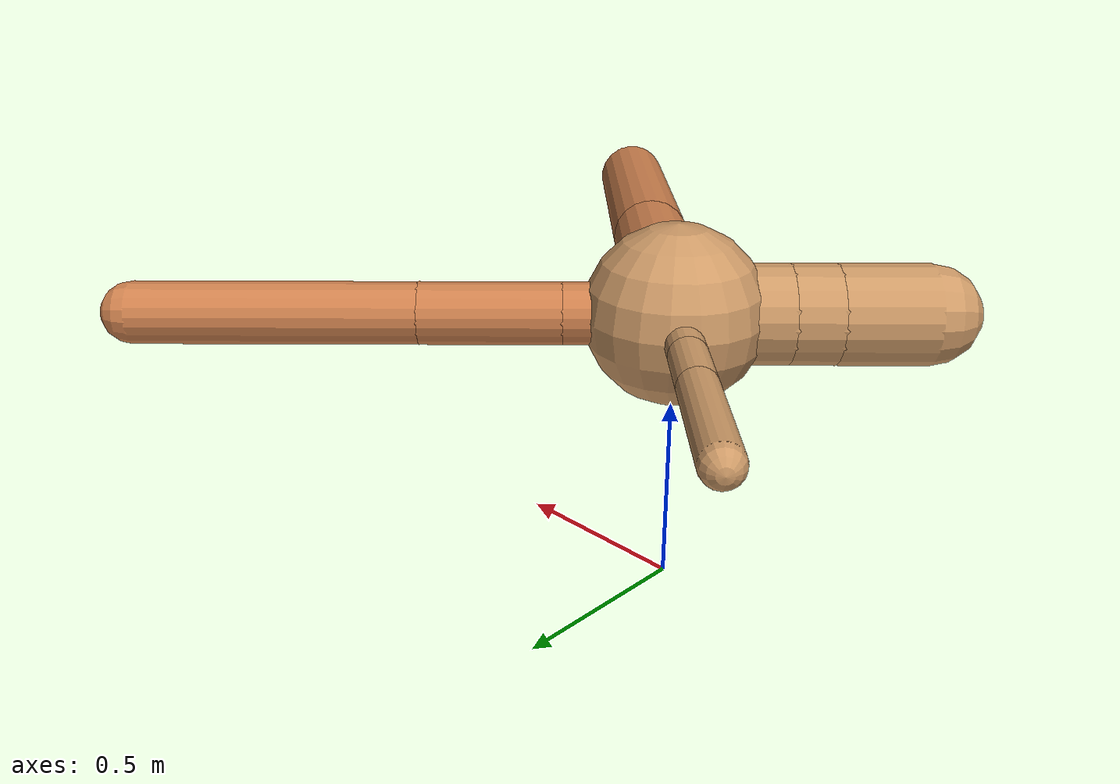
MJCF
<?xml version="1.0" ?>
<mujoco model="ant">

	<compiler angle="degree" coordinate="local" inertiafromgeom="true"/>

	<option integrator="RK4" timestep="0.01"/>

	<custom>

		<numeric data="0.0 0.0 0.55 1.0 0.0 0.0 0.0 0.0 1.0 0.0 -1.0 0.0 -1.0 0.0 1.0" name="init_qpos"/>

	</custom>

	<default>

		<joint armature="1" damping="1" limited="true"/>

		<geom conaffinity="0" condim="3" density="5.0" friction="1.5 0.1 0.1" margin="0.01" rgba="0.8 0.6 0.4 1"/>

	</default>

	<worldbody>

		<body name="torso" pos="0 0 0.75">

			<geom name="torso_geom" pos="0 0 0" size="0.2318634048917663" type="sphere"/>

			<!--joint armature="0" damping="0" limited="false" margin="0.01" name="root" pos="0 0 0" type="free"/-->

			<body name="front_left_leg" pos="0 0 0">

				<geom fromto="0 0 0 0.2 0.2 0" name="aux_1_geom" size="0.0799736616437614" type="capsule" rgba=".8 .5 .3 1"/>

				<body name="aux_1" pos="0.2 0.2 0">

					<joint axis="0 0 1" name="hip_1" pos="0.0 0.0 0.0" range="-40 40" type="hinge"/>

					<geom fromto="0 0 0 0.2543687904833965 0.2543687904833965 0" name="left_leg_geom" size="0.0799736616437614" type="capsule" rgba=".8 .5 .3 1"/>

					<body pos="0.2543687904833965 0.2543687904833965 0" name="front_left_foot">

						<joint axis="-1 1 0" name="ankle_1" pos="0.0 0.0 0.0" range="30 100" type="hinge"/>

						<geom fromto="0 0 0 0.508737580966793 0.508737580966793 0" name="left_ankle_geom" size="0.0799736616437614" type="capsule" rgba=".8 .5 .3 1"/>

					</body>

				</body>

			</body>

			<body name="front_right_leg" pos="0 0 0">

				<geom fromto="0 0 0 -0.2 0.2 0" name="aux_2_geom" size="0.0481552992384553" type="capsule"/>

				<body name="aux_2" pos="-0.2 0.2 0">

					<joint axis="0 0 1" name="hip_2" pos="0.0 0.0 0.0" range="-40 40" type="hinge"/>

					<geom fromto="0 0 0 -0.12353942660611139 0.12353942660611139 0" name="right_leg_geom" size="0.0481552992384553" type="capsule"/>

					<body pos="-0.12353942660611139 0.12353942660611139 0" name="front_right_foot">

						<joint axis="1 1 0" name="ankle_2" pos="0.0 0.0 0.0" range="-100 -30" type="hinge"/>

						<geom fromto="0 0 0 -0.24707885321222278 0.24707885321222278 0" name="right_ankle_geom" size="0.0481552992384553" type="capsule"/>

					</body>

				</body>

			</body>

			<body name="left_back_leg" pos="0 0 0">

				<geom fromto="0 0 0 -0.2 -0.2 0" name="aux_3_geom" size="0.12956663722003398" type="capsule"/>

				<body name="aux_3" pos="-0.2 -0.2 0">

					<joint axis="0 0 1" name="hip_3" pos="0.0 0.0 0.0" range="-40 40" type="hinge"/>

					<geom fromto="0 0 0 -0.08266261301224316 -0.08266261301224316 0" name="back_leg_geom" size="0.12956663722003398" type="capsule"/>

					<body pos="-0.08266261301224316 -0.08266261301224316 0" name="left_back_foot">

						<joint axis="-1 1 0" name="ankle_3" pos="0.0 0.0 0.0" range="-100 -30" type="hinge"/>

						<geom fromto="0 0 0 -0.16532522602448632 -0.16532522602448632 0" name="third_ankle_geom" size="0.12956663722003398" type="capsule"/>

					</body>

				</body>

			</body>

			<body name="right_back_leg" pos="0 0 0">

				<geom fromto="0 0 0 0.2 -0.2 0" name="aux_4_geom" size="0.11433465492525813" type="capsule" rgba=".8 .5 .3 1"/>

				<body name="aux_4" pos="0.2 -0.2 0">

					<joint axis="0 0 1" name="hip_4" pos="0.0 0.0 0.0" range="-40 40" type="hinge"/>

					<geom fromto="0 0 0 0.30934509171417257 -0.30934509171417257 0" name="rightback_leg_geom" size="0.11433465492525813" type="capsule" rgba=".8 .5 .3 1"/>

					<body pos="0.30934509171417257 -0.30934509171417257 0" name="right_back_foot">

						<joint axis="1 1 0" name="ankle_4" pos="0.0 0.0 0.0" range="30 100" type="hinge"/>

						<geom fromto="0 0 0 0.6186901834283451 -0.6186901834283451 0" name="fourth_ankle_geom" size="0.11433465492525813" type="capsule" rgba=".8 .5 .3 1"/>

					</body>

				</body>

			</body>

		</body>

	</worldbody>

	<actuator>

		<motor ctrllimited="true" ctrlrange="-1.0 1.0" joint="hip_4" gear="150"/>

		<motor ctrllimited="true" ctrlrange="-1.0 1.0" joint="ankle_4" gear="150"/>

		<motor ctrllimited="true" ctrlrange="-1.0 1.0" joint="hip_1" gear="150"/>

		<motor ctrllimited="true" ctrlrange="-1.0 1.0" joint="ankle_1" gear="150"/>

		<motor ctrllimited="true" ctrlrange="-1.0 1.0" joint="hip_2" gear="150"/>

		<motor ctrllimited="true" ctrlrange="-1.0 1.0" joint="ankle_2" gear="150"/>

		<motor ctrllimited="true" ctrlrange="-1.0 1.0" joint="hip_3" gear="150"/>

		<motor ctrllimited="true" ctrlrange="-1.0 1.0" joint="ankle_3" gear="150"/>

	</actuator>

</mujoco>
